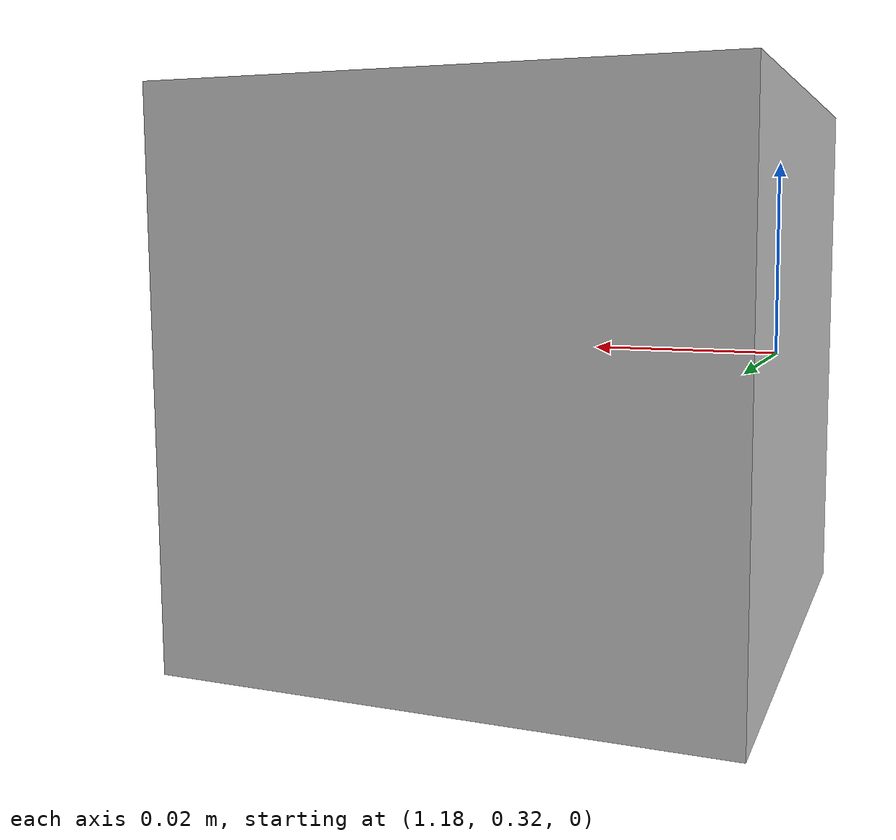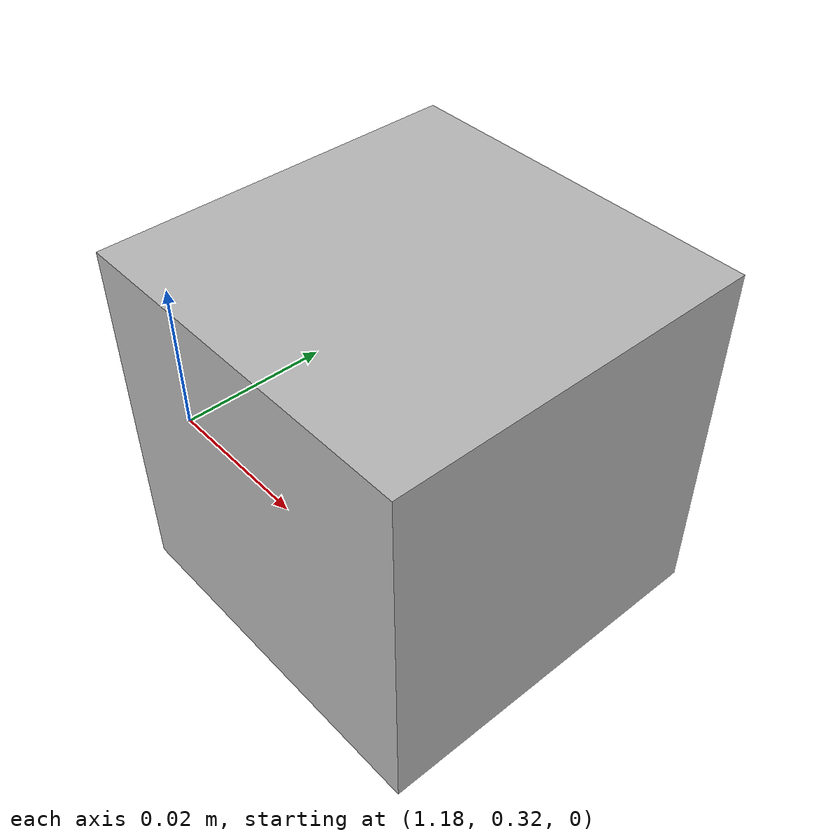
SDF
<?xml version='1.0'?>
  <sdf version='1.6'>
    <model name="aruco">
      <static>false</static>

      <link name='cube'>
        <pose>1.2 .34 0 0 0 0</pose>

        <collision name='collision'>
          <geometry>
            <box>
              <size>.05 .05 .05</size>
            </box>
          </geometry>
        </collision>

        <surface>
          <friction>
            <ode>
              <mu>1</mu>
              <mu2>1</mu2>
              <slip1>1.0</slip1>
              <slip2>1.0</slip2>
            </ode>
          </friction>
        </surface>

        <visual name='visual'>
          <geometry>
            <box>
              <size>.05 .05 .05</size>
            </box>
          </geometry>
        </visual>
      </link>

    </model>
  </sdf>
